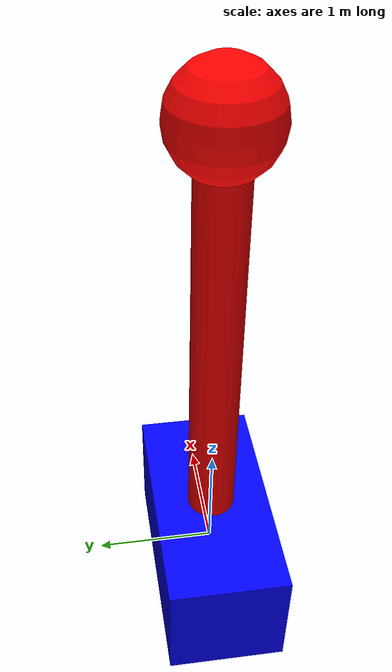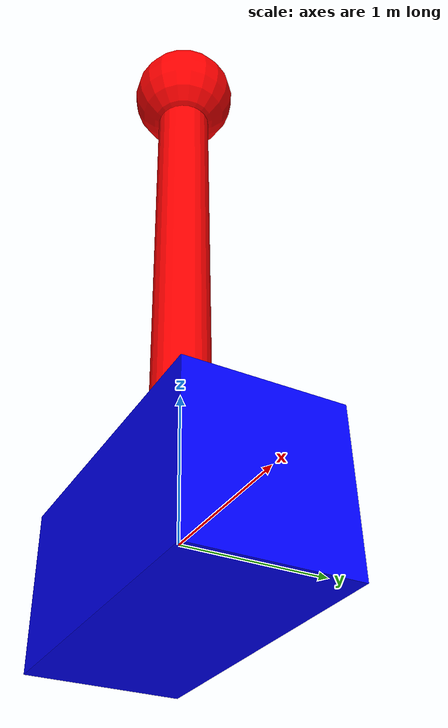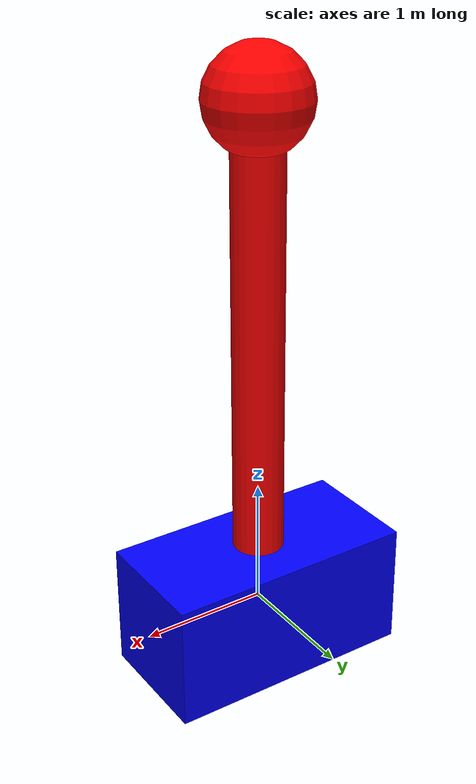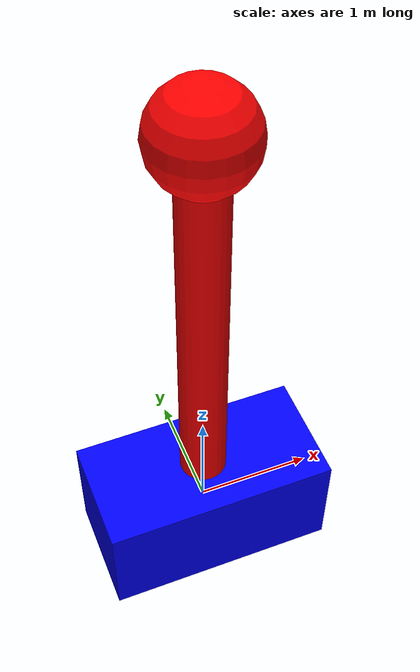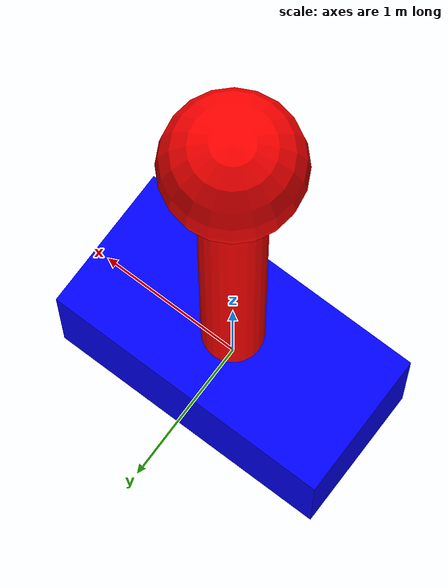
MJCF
<mujoco model="cart_pendulum">
	<compiler angle="degree" coordinate="local" />
	<option timestep="0.01" integrator="RK4" gravity="0 0 -9.81" />
	<default>
		<geom rgba="1 1 1 1" />
	</default>
	<worldbody>
		<light diffuse="1 1 1" pos="0 0 3" dir="0 0 -1" />
		<body name="cart" pos="0 0 0">
			<joint name="cart_slide" type="slide" pos="0 0 0" axis="1 0 0" damping="0.0" limited="false" range="-100 100" />
			<geom type="box" size="1.0 0.5 0.5" rgba="0 0 1 1" mass="5" />
			<body name="pendulum" pos="0 0 0" euler="0 0 0">
				<joint name="pendulum_hinge" type="hinge" pos="0 0 0" axis="0 1 0" damping="0.0" />
				<geom type="cylinder" pos="0 0 2" size="0.2 2" rgba="1 0 0 1" mass="0" />
				<body name="pendulum_mass" pos="0 0 2">
					<geom type="sphere" pos="0 0 2" size="0.4" rgba="1 0 0 1" mass="1" />
				</body>
			</body>
		</body>
	</worldbody>
	<sensor>
		<jointpos name="cart_position" joint="cart_slide" noise="0.0" />
		<jointvel name="cart_velocity" joint="cart_slide" noise="0.0" />
		<jointpos name="pendulum_theta" joint="pendulum_hinge" noise="0.0" />
		<jointvel name="pendulum_theta_dot" joint="pendulum_hinge" noise="0.0" />
	</sensor>
	<actuator>
		<motor joint="cart_slide" ctrllimited="false" ctrlrange="-1 1" />
	</actuator>
</mujoco>
